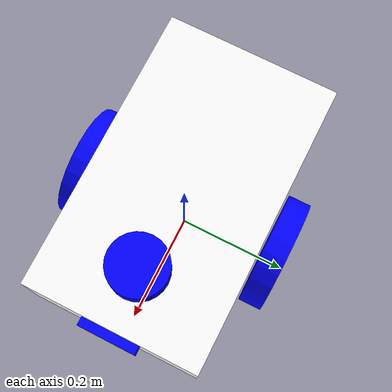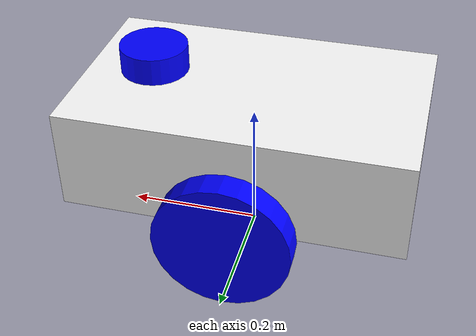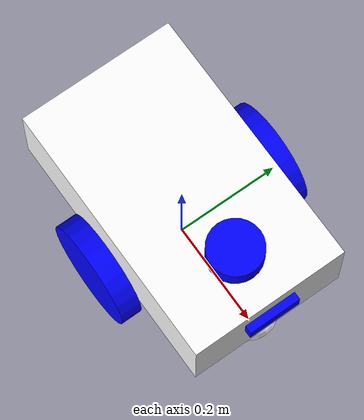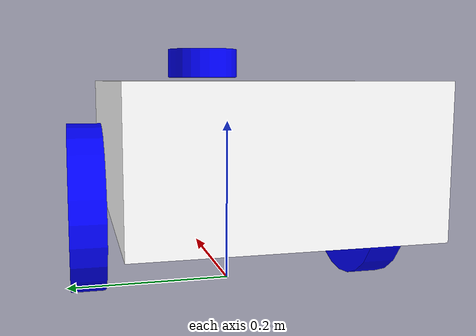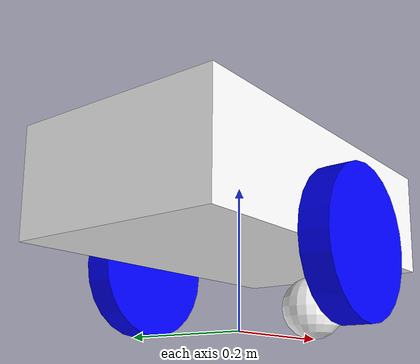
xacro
<?xml version="1.0"?>
<robot xmlns:xacro="http://www.ros.org/wiki/xacro" name="object_aware_robot">

    <material name="white"><color rgba="1 1 1 1"/></material>
    <material name="blue"><color rgba="0 0 1 1"/></material>

    <link name="base_footprint"/>

    <joint name="base_footprint_joint" type="fixed">
        <parent link="base_footprint"/>
        <child link="base_link"/>
        <origin xyz="0 0 0.1" rpy="0 0 0"/>
    </joint>

    <link name="base_link">
        <visual>
            <origin xyz="0 0 0.075"/>
            <geometry><box size="0.5 0.3 0.15"/></geometry>
            <material name="white"/>
        </visual>
        <collision>
            <origin xyz="0 0 0.075"/>
            <geometry><box size="0.5 0.3 0.15"/></geometry>
        </collision>
        <inertial>
            <origin xyz="0 0 0.075" rpy="0 0 0"/>
            <mass value="5.0"/>
            <inertia ixx="0.046875" ixy="0.0" ixz="0.0" iyy="0.114583" iyz="0.0" izz="0.141667"/>
        </inertial>
    </link>

    <joint name="left_wheel_joint" type="continuous">
        <parent link="base_link"/>
        <child link="left_wheel"/>
        <origin xyz="0 0.175 0" rpy="-1.570795 0 0"/>
        <axis xyz="0 0 1"/>
    </joint>

    <link name="left_wheel">
        <visual>
            <geometry><cylinder radius="0.1" length="0.04"/></geometry>
            <material name="blue"/>
        </visual>
        <collision>
            <geometry><cylinder radius="0.1" length="0.04"/></geometry>
        </collision>
        <inertial>
            <mass value="0.5"/>
            <inertia ixx="0.001316" ixy="0.0" ixz="0.0" iyy="0.001316" iyz="0.0" izz="0.0025"/>
        </inertial>
    </link>

    <joint name="right_wheel_joint" type="continuous">
        <parent link="base_link"/>
        <child link="right_wheel"/>
        <origin xyz="0 -0.175 0" rpy="1.570795 0 0"/>
        <axis xyz="0 0 1"/>
    </joint>

    <link name="right_wheel">
        <visual>
            <geometry><cylinder radius="0.1" length="0.04"/></geometry>
            <material name="blue"/>
        </visual>
        <collision>
            <geometry><cylinder radius="0.1" length="0.04"/></geometry>
        </collision>
        <inertial>
            <mass value="0.5"/>
            <inertia ixx="0.001316" ixy="0.0" ixz="0.0" iyy="0.001316" iyz="0.0" izz="0.0025"/>
        </inertial>
    </link>

    <joint name="caster_wheel_joint" type="fixed">
        <parent link="base_link"/>
        <child link="caster_wheel"/>
        <origin xyz="0.2 0 -0.05"/>
    </joint>

    <link name="caster_wheel">
        <visual>
            <geometry><sphere radius="0.05"/></geometry>
            <material name="white"/>
        </visual>
        <collision>
            <geometry><sphere radius="0.05"/></geometry>
        </collision>
        <inertial>
            <mass value="0.2"/>
            <inertia ixx="0.0002" ixy="0.0" ixz="0.0" iyy="0.0002" iyz="0.0" izz="0.0002"/>
        </inertial>
    </link>

    <joint name="laser_joint" type="fixed">
        <parent link="base_link"/>
        <child link="laser_frame"/>
        <origin xyz="0.15 0 0.175" rpy="0 0 0"/>
    </joint>
    <link name="laser_frame">
        <visual>
            <geometry><cylinder radius="0.05" length="0.04"/></geometry>
            <material name="blue"/>
        </visual>
        <collision>
            <geometry><cylinder radius="0.05" length="0.04"/></geometry>
        </collision>
        <inertial>
            <mass value="0.1"/>
            <inertia ixx="0.000075" ixy="0.0" ixz="0.0" iyy="0.000075" iyz="0.0" izz="0.000125"/>
        </inertial>
    </link>

    <joint name="camera_joint" type="fixed">
        <parent link="base_link"/>
        <child link="camera_link"/>
        <origin xyz="0.25 0 0.1" rpy="0 0 0"/>
    </joint>
    <link name="camera_link">
        <visual>
            <geometry><box size="0.03 0.1 0.03"/></geometry>
            <material name="blue"/>
        </visual>
        <collision>
            <geometry><box size="0.03 0.1 0.03"/></geometry>
        </collision>
        <inertial>
            <mass value="0.05"/>
            <inertia ixx="0.000043" ixy="0.0" ixz="0.0" iyy="0.000008" iyz="0.0" izz="0.000043"/>
        </inertial>
    </link>

    <gazebo reference="laser_joint"><preserveFixedJoint>true</preserveFixedJoint></gazebo>
    <gazebo reference="camera_joint"><preserveFixedJoint>true</preserveFixedJoint></gazebo>

    <gazebo reference="laser_frame">
        <sensor type="gpu_ray" name="generic_lidar">
            <pose>0 0 0 0 0 0</pose>
            <topic>scan</topic>
            <update_rate>10</update_rate>
            <gz_frame_id>laser_frame</gz_frame_id>
            <ray>
                <scan>
                    <horizontal>
                        <samples>640</samples>
                        <resolution>1</resolution>
                        <min_angle>-3.14159</min_angle>
                        <max_angle>3.14159</max_angle>
                    </horizontal>
                </scan>
                <range>
                    <min>0.15</min>
                    <max>12.0</max>
                    <resolution>0.01</resolution>
                </range>
            </ray>
            <always_on>1</always_on>
            <visualize>true</visualize>
        </sensor>
    </gazebo>

    <gazebo reference="camera_link">
        <sensor type="rgbd" name="generic_camera">
            <pose>0 0 0 0 0 0</pose>
            <topic>camera</topic>
            <update_rate>30</update_rate>
            <gz_frame_id>camera_link</gz_frame_id>
            <camera>
                <horizontal_fov>1.089</horizontal_fov>
                <image>
                    <width>640</width>
                    <height>480</height>
                    <format>R8G8B8</format>
                </image>
                <clip>
                    <near>0.05</near>
                    <far>8.0</far>
                </clip>
            </camera>
            <always_on>1</always_on>
            <visualize>true</visualize>
        </sensor>
    </gazebo>

    <gazebo reference="base_link">
        <sensor type="imu" name="generic_imu">
            <always_on>1</always_on>
            <update_rate>100</update_rate>
            <topic>imu/data</topic>
        </sensor>
    </gazebo>
    <gazebo>
        <plugin filename="gz-sim-odometry-publisher-system" name="gz::sim::systems::OdometryPublisher">
            <dimensions>3</dimensions>
            <odom_frame>odom</odom_frame>
            <robot_base_frame>base_footprint</robot_base_frame> <odom_topic>odom</odom_topic>
            <tf_topic>tf</tf_topic>
        </plugin>
    </gazebo>
    <gazebo>
        <plugin filename="gz-sim-diff-drive-system" name="gz::sim::systems::DiffDrive">
            <left_joint>left_wheel_joint</left_joint>
            <right_joint>right_wheel_joint</right_joint>
            <wheel_separation>0.35</wheel_separation>
            <wheel_diameter>0.2</wheel_diameter>
            <max_wheel_torque>20</max_wheel_torque>
            <max_wheel_acceleration>1.0</max_wheel_acceleration>

            <odom_frame>odom</odom_frame>
            <robot_base_frame>base_footprint</robot_base_frame>

            <topic>/cmd_vel</topic>
            <odom_topic>odom</odom_topic>
            <tf_topic>tf</tf_topic>

            <publish_odom>true</publish_odom>
            <publish_odom_tf>false</publish_odom_tf>
            <publish_wheel_tf>true</publish_wheel_tf>
        </plugin>
    </gazebo>
    <gazebo>
        <plugin filename="gz-sim-joint-state-publisher-system" name="gz::sim::systems::JointStatePublisher">
            <joint_name>left_wheel_joint</joint_name>
            <joint_name>right_wheel_joint</joint_name>
            <topic>joint_states</topic>
            <update_rate>30</update_rate>
        </plugin>
    </gazebo>
</robot>
